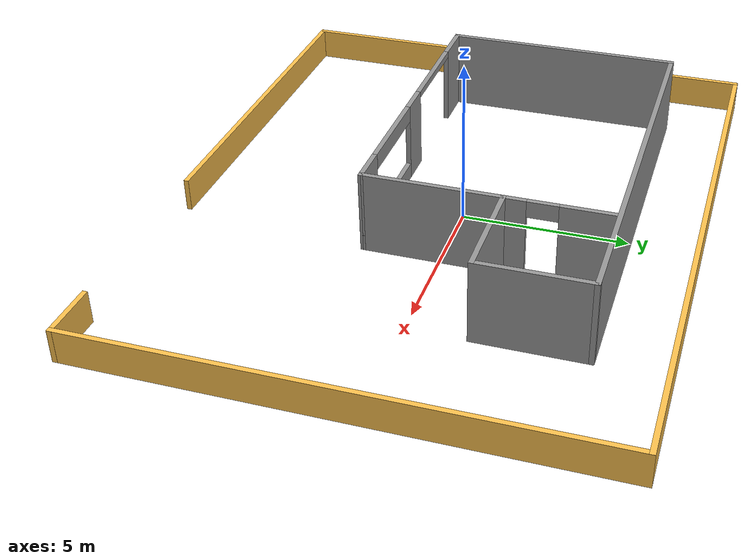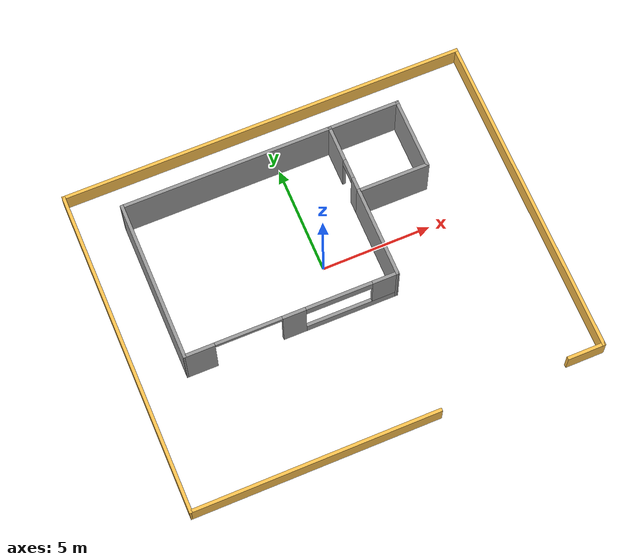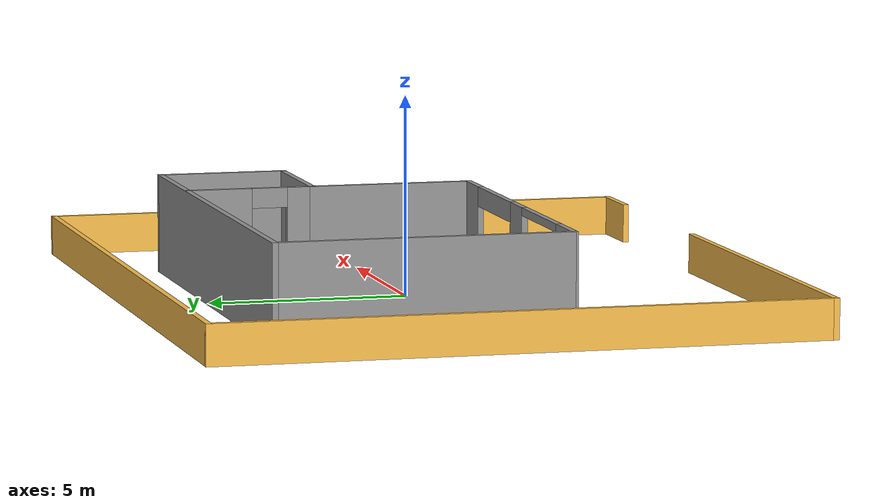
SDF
<?xml version='1.0'?>
<sdf version='1.6'>
  <model name='building'>
    <pose frame=''>0.079 -0.505 0 0 -0 0</pose>
    <link name='Wall_10'>
      <collision name='Wall_10_Collision'>
        <geometry>
          <box>
            <size>3.35 0.15 2.5</size>
          </box>
        </geometry>
        <pose frame=''>0 0 1.25 0 -0 0</pose>
      </collision>
      <visual name='Wall_10_Visual'>
        <pose frame=''>0 0 1.25 0 -0 0</pose>
        <geometry>
          <box>
            <size>3.35 0.15 2.5</size>
          </box>
        </geometry>
        <material>
          <script>
            <uri>file://media/materials/scripts/gazebo.material</uri>
            <name>Gazebo/Grey</name>
          </script>
          <ambient>1 1 1 1</ambient>
        </material>
        <meta>
          <layer>0</layer>
        </meta>
      </visual>
      <pose frame=''>5.489 3.905 0 0 -0 1.5708</pose>
    </link>
    <link name='Wall_11'>
      <collision name='Wall_11_Collision'>
        <geometry>
          <box>
            <size>12.85 0.15 2.5</size>
          </box>
        </geometry>
        <pose frame=''>0 0 1.25 0 -0 0</pose>
      </collision>
      <visual name='Wall_11_Visual'>
        <pose frame=''>0 0 1.25 0 -0 0</pose>
        <geometry>
          <box>
            <size>12.85 0.15 2.5</size>
          </box>
        </geometry>
        <material>
          <script>
            <uri>file://media/materials/scripts/gazebo.material</uri>
            <name>Gazebo/Grey</name>
          </script>
          <ambient>1 1 1 1</ambient>
        </material>
        <meta>
          <layer>0</layer>
        </meta>
      </visual>
      <pose frame=''>-0.861 5.505 0 0 -0 3.14159</pose>
    </link>
    <link name='Wall_13'>
      <pose frame=''>2.321 3.884 0 0 -0 1.5708</pose>
      <visual name='Wall_13_Visual_0'>
        <pose frame=''>-1.28726 0 1.25 0 -0 0</pose>
        <geometry>
          <box>
            <size>0.733951 0.15 2.5</size>
          </box>
        </geometry>
        <material>
          <script>
            <uri>file://media/materials/scripts/gazebo.material</uri>
            <name>Gazebo/Grey</name>
          </script>
          <ambient>1 1 1 1</ambient>
        </material>
        <meta>
          <layer>0</layer>
        </meta>
      </visual>
      <collision name='Wall_13_Collision_0'>
        <geometry>
          <box>
            <size>0.733951 0.15 2.5</size>
          </box>
        </geometry>
        <pose frame=''>-1.28726 0 1.25 0 -0 0</pose>
      </collision>
      <visual name='Wall_13_Visual_1'>
        <pose frame=''>0.816975 0 1.25 0 -0 0</pose>
        <geometry>
          <box>
            <size>1.67452 0.15 2.5</size>
          </box>
        </geometry>
        <material>
          <script>
            <uri>file://media/materials/scripts/gazebo.material</uri>
            <name>Gazebo/Grey</name>
          </script>
          <ambient>1 1 1 1</ambient>
        </material>
        <meta>
          <layer>0</layer>
        </meta>
      </visual>
      <collision name='Wall_13_Collision_1'>
        <geometry>
          <box>
            <size>1.67452 0.15 2.5</size>
          </box>
        </geometry>
        <pose frame=''>0.816975 0 1.25 0 -0 0</pose>
      </collision>
      <visual name='Wall_13_Visual_2'>
        <pose frame=''>-0.470286 0 2.25 0 -0 0</pose>
        <geometry>
          <box>
            <size>0.9 0.15 0.5</size>
          </box>
        </geometry>
        <material>
          <script>
            <uri>file://media/materials/scripts/gazebo.material</uri>
            <name>Gazebo/Grey</name>
          </script>
          <ambient>1 1 1 1</ambient>
        </material>
        <meta>
          <layer>0</layer>
        </meta>
      </visual>
      <collision name='Wall_13_Collision_2'>
        <geometry>
          <box>
            <size>0.9 0.15 0.5</size>
          </box>
        </geometry>
        <pose frame=''>-0.470286 0 2.25 0 -0 0</pose>
      </collision>
    </link>
    <link name='Wall_16'>
      <collision name='Wall_16_Collision'>
        <geometry>
          <box>
            <size>18.75 0.15 1</size>
          </box>
        </geometry>
        <pose frame=''>0 0 0.5 0 -0 0</pose>
      </collision>
      <visual name='Wall_16_Visual'>
        <pose frame=''>0 0 0.5 0 -0 0</pose>
        <geometry>
          <box>
            <size>18.75 0.15 1</size>
          </box>
        </geometry>
        <material>
          <script>
            <uri>file://media/materials/scripts/gazebo.material</uri>
            <name>Gazebo/Grey</name>
          </script>
          <ambient>1 0.764706 0.305882 1</ambient>
        </material>
        <meta>
          <layer>0</layer>
        </meta>
      </visual>
      <pose frame=''>0 7.55 0 0 -0 0</pose>
    </link>
    <link name='Wall_17'>
      <collision name='Wall_17_Collision'>
        <geometry>
          <box>
            <size>15.25 0.15 1</size>
          </box>
        </geometry>
        <pose frame=''>0 0 0.5 0 -0 0</pose>
      </collision>
      <visual name='Wall_17_Visual'>
        <pose frame=''>0 0 0.5 0 -0 0</pose>
        <geometry>
          <box>
            <size>15.25 0.15 1</size>
          </box>
        </geometry>
        <material>
          <script>
            <uri>file://media/materials/scripts/gazebo.material</uri>
            <name>Gazebo/Grey</name>
          </script>
          <ambient>1 0.764706 0.305882 1</ambient>
        </material>
        <meta>
          <layer>0</layer>
        </meta>
      </visual>
      <pose frame=''>9.3 0 0 0 0 -1.5708</pose>
    </link>
    <link name='Wall_19'>
      <collision name='Wall_19_Collision'>
        <geometry>
          <box>
            <size>15.25 0.15 1</size>
          </box>
        </geometry>
        <pose frame=''>0 0 0.5 0 -0 0</pose>
      </collision>
      <visual name='Wall_19_Visual'>
        <pose frame=''>0 0 0.5 0 -0 0</pose>
        <geometry>
          <box>
            <size>15.25 0.15 1</size>
          </box>
        </geometry>
        <material>
          <script>
            <uri>file://media/materials/scripts/gazebo.material</uri>
            <name>Gazebo/Grey</name>
          </script>
          <ambient>1 0.764706 0.305882 1</ambient>
        </material>
        <meta>
          <layer>0</layer>
        </meta>
      </visual>
      <pose frame=''>-9.3 0 0 0 -0 1.5708</pose>
    </link>
    <link name='Wall_21'>
      <collision name='Wall_21_Collision'>
        <geometry>
          <box>
            <size>11.25 0.15 1</size>
          </box>
        </geometry>
        <pose frame=''>0 0 0.5 0 -0 0</pose>
      </collision>
      <visual name='Wall_21_Visual'>
        <pose frame=''>0 0 0.5 0 -0 0</pose>
        <geometry>
          <box>
            <size>11.25 0.15 1</size>
          </box>
        </geometry>
        <material>
          <script>
            <uri>file://media/materials/scripts/gazebo.material</uri>
            <name>Gazebo/Grey</name>
          </script>
          <ambient>1 0.764706 0.305882 1</ambient>
        </material>
        <meta>
          <layer>0</layer>
        </meta>
      </visual>
      <pose frame=''>-3.75 -7.55 0 0 -0 0</pose>
    </link>
    <link name='Wall_23'>
      <collision name='Wall_23_Collision'>
        <geometry>
          <box>
            <size>1.75 0.15 1</size>
          </box>
        </geometry>
        <pose frame=''>0 0 0.5 0 -0 0</pose>
      </collision>
      <visual name='Wall_23_Visual'>
        <pose frame=''>0 0 0.5 0 -0 0</pose>
        <geometry>
          <box>
            <size>1.75 0.15 1</size>
          </box>
        </geometry>
        <material>
          <script>
            <uri>file://media/materials/scripts/gazebo.material</uri>
            <name>Gazebo/Grey</name>
          </script>
          <ambient>1 0.764706 0.305882 1</ambient>
        </material>
        <meta>
          <layer>0</layer>
        </meta>
      </visual>
      <pose frame=''>8.5 -7.55 0 0 -0 3.14159</pose>
    </link>
    <link name='Wall_6'>
      <collision name='Wall_6_Collision'>
        <geometry>
          <box>
            <size>7.41574 0.15 2.5</size>
          </box>
        </geometry>
        <pose frame=''>0 0 1.25 0 -0 0</pose>
      </collision>
      <visual name='Wall_6_Visual'>
        <pose frame=''>0 0 1.25 0 -0 0</pose>
        <geometry>
          <box>
            <size>7.41574 0.15 2.5</size>
          </box>
        </geometry>
        <material>
          <script>
            <uri>file://media/materials/scripts/gazebo.material</uri>
            <name>Gazebo/Grey</name>
          </script>
          <ambient>1 1 1 1</ambient>
        </material>
        <meta>
          <layer>0</layer>
        </meta>
      </visual>
      <pose frame=''>-7.21096 1.87213 0 0 0 -1.57079</pose>
    </link>
    <link name='Wall_7'>
      <pose frame=''>-2.44496 -1.76737 0 0 0 -0.001391</pose>
      <visual name='Wall_7_Visual_0'>
        <pose frame=''>-4.13426 0 1.25 0 -0 0</pose>
        <geometry>
          <box>
            <size>1.41341 0.15 2.5</size>
          </box>
        </geometry>
        <material>
          <script>
            <uri>file://media/materials/scripts/gazebo.material</uri>
            <name>Gazebo/Grey</name>
          </script>
          <ambient>1 1 1 1</ambient>
        </material>
        <meta>
          <layer>0</layer>
        </meta>
      </visual>
      <collision name='Wall_7_Collision_0'>
        <geometry>
          <box>
            <size>1.41341 0.15 2.5</size>
          </box>
        </geometry>
        <pose frame=''>-4.13426 0 1.25 0 -0 0</pose>
      </collision>
      <visual name='Wall_7_Visual_1'>
        <pose frame=''>0.09879 0 1.25 0 -0 0</pose>
        <geometry>
          <box>
            <size>1.05268 0.15 2.5</size>
          </box>
        </geometry>
        <material>
          <script>
            <uri>file://media/materials/scripts/gazebo.material</uri>
            <name>Gazebo/Grey</name>
          </script>
          <ambient>1 1 1 1</ambient>
        </material>
        <meta>
          <layer>0</layer>
        </meta>
      </visual>
      <collision name='Wall_7_Collision_1'>
        <geometry>
          <box>
            <size>1.05268 0.15 2.5</size>
          </box>
        </geometry>
        <pose frame=''>0.09879 0 1.25 0 -0 0</pose>
      </collision>
      <visual name='Wall_7_Visual_2'>
        <pose frame=''>2.73305 0 0.25 0 -0 0</pose>
        <geometry>
          <box>
            <size>4.21584 0.15 0.5</size>
          </box>
        </geometry>
        <material>
          <script>
            <uri>file://media/materials/scripts/gazebo.material</uri>
            <name>Gazebo/Grey</name>
          </script>
          <ambient>1 1 1 1</ambient>
        </material>
        <meta>
          <layer>0</layer>
        </meta>
      </visual>
      <collision name='Wall_7_Collision_2'>
        <geometry>
          <box>
            <size>4.21584 0.15 0.5</size>
          </box>
        </geometry>
        <pose frame=''>2.73305 0 0.25 0 -0 0</pose>
      </collision>
      <visual name='Wall_7_Visual_3'>
        <pose frame=''>4.23305 0 1.5 0 -0 0</pose>
        <geometry>
          <box>
            <size>1.21583 0.15 2</size>
          </box>
        </geometry>
        <material>
          <script>
            <uri>file://media/materials/scripts/gazebo.material</uri>
            <name>Gazebo/Grey</name>
          </script>
          <ambient>1 1 1 1</ambient>
        </material>
        <meta>
          <layer>0</layer>
        </meta>
      </visual>
      <collision name='Wall_7_Collision_3'>
        <geometry>
          <box>
            <size>1.21583 0.15 2</size>
          </box>
        </geometry>
        <pose frame=''>4.23305 0 1.5 0 -0 0</pose>
      </collision>
      <visual name='Wall_7_Visual_4'>
        <pose frame=''>2.12513 0 2.25 0 -0 0</pose>
        <geometry>
          <box>
            <size>3 0.15 0.5</size>
          </box>
        </geometry>
        <material>
          <script>
            <uri>file://media/materials/scripts/gazebo.material</uri>
            <name>Gazebo/Grey</name>
          </script>
          <ambient>1 1 1 1</ambient>
        </material>
        <meta>
          <layer>0</layer>
        </meta>
      </visual>
      <collision name='Wall_7_Collision_4'>
        <geometry>
          <box>
            <size>3 0.15 0.5</size>
          </box>
        </geometry>
        <pose frame=''>2.12513 0 2.25 0 -0 0</pose>
      </collision>
      <visual name='Wall_7_Visual_5'>
        <pose frame=''>-1.92755 0 2.4 0 -0 0</pose>
        <geometry>
          <box>
            <size>3 0.15 0.2</size>
          </box>
        </geometry>
        <material>
          <script>
            <uri>file://media/materials/scripts/gazebo.material</uri>
            <name>Gazebo/Grey</name>
          </script>
          <ambient>1 1 1 1</ambient>
        </material>
        <meta>
          <layer>0</layer>
        </meta>
      </visual>
      <collision name='Wall_7_Collision_5'>
        <geometry>
          <box>
            <size>3 0.15 0.2</size>
          </box>
        </geometry>
        <pose frame=''>-1.92755 0 2.4 0 -0 0</pose>
      </collision>
    </link>
    <link name='Wall_8'>
      <collision name='Wall_8_Collision'>
        <geometry>
          <box>
            <size>4.22905 0.15 2.5</size>
          </box>
        </geometry>
        <pose frame=''>0 0 1.25 0 -0 0</pose>
      </collision>
      <visual name='Wall_8_Visual'>
        <pose frame=''>0 0 1.25 0 -0 0</pose>
        <geometry>
          <box>
            <size>4.22905 0.15 2.5</size>
          </box>
        </geometry>
        <material>
          <script>
            <uri>file://media/materials/scripts/gazebo.material</uri>
            <name>Gazebo/Grey</name>
          </script>
          <ambient>1 1 1 1</ambient>
        </material>
        <meta>
          <layer>0</layer>
        </meta>
      </visual>
      <pose frame=''>2.321 0.2655 0 0 -0 1.5708</pose>
    </link>
    <link name='Wall_9'>
      <collision name='Wall_9_Collision'>
        <geometry>
          <box>
            <size>3.318 0.15 2.5</size>
          </box>
        </geometry>
        <pose frame=''>0 0 1.25 0 -0 0</pose>
      </collision>
      <visual name='Wall_9_Visual'>
        <pose frame=''>0 0 1.25 0 -0 0</pose>
        <geometry>
          <box>
            <size>3.318 0.15 2.5</size>
          </box>
        </geometry>
        <material>
          <script>
            <uri>file://media/materials/scripts/gazebo.material</uri>
            <name>Gazebo/Grey</name>
          </script>
          <ambient>1 1 1 1</ambient>
        </material>
        <meta>
          <layer>0</layer>
        </meta>
      </visual>
      <pose frame=''>3.905 2.305 0 0 -0 0</pose>
    </link>
    <static>1</static>
  </model>
</sdf>
